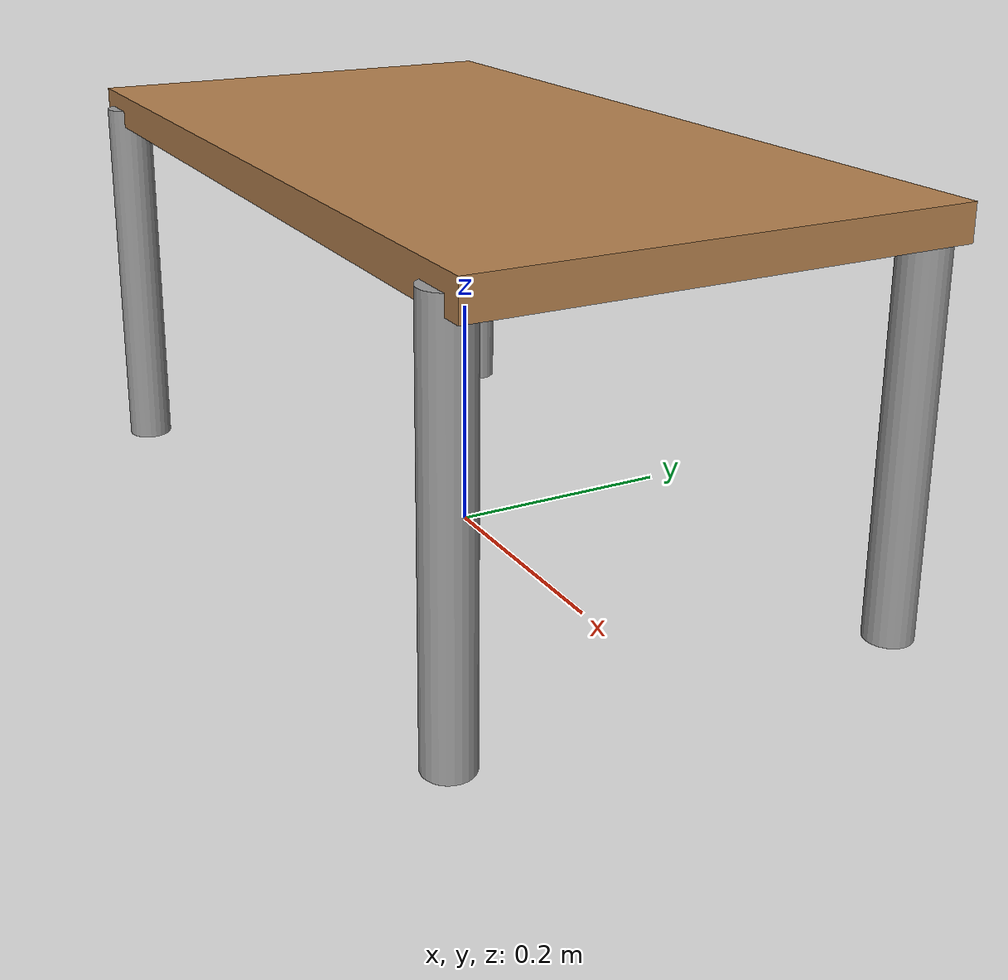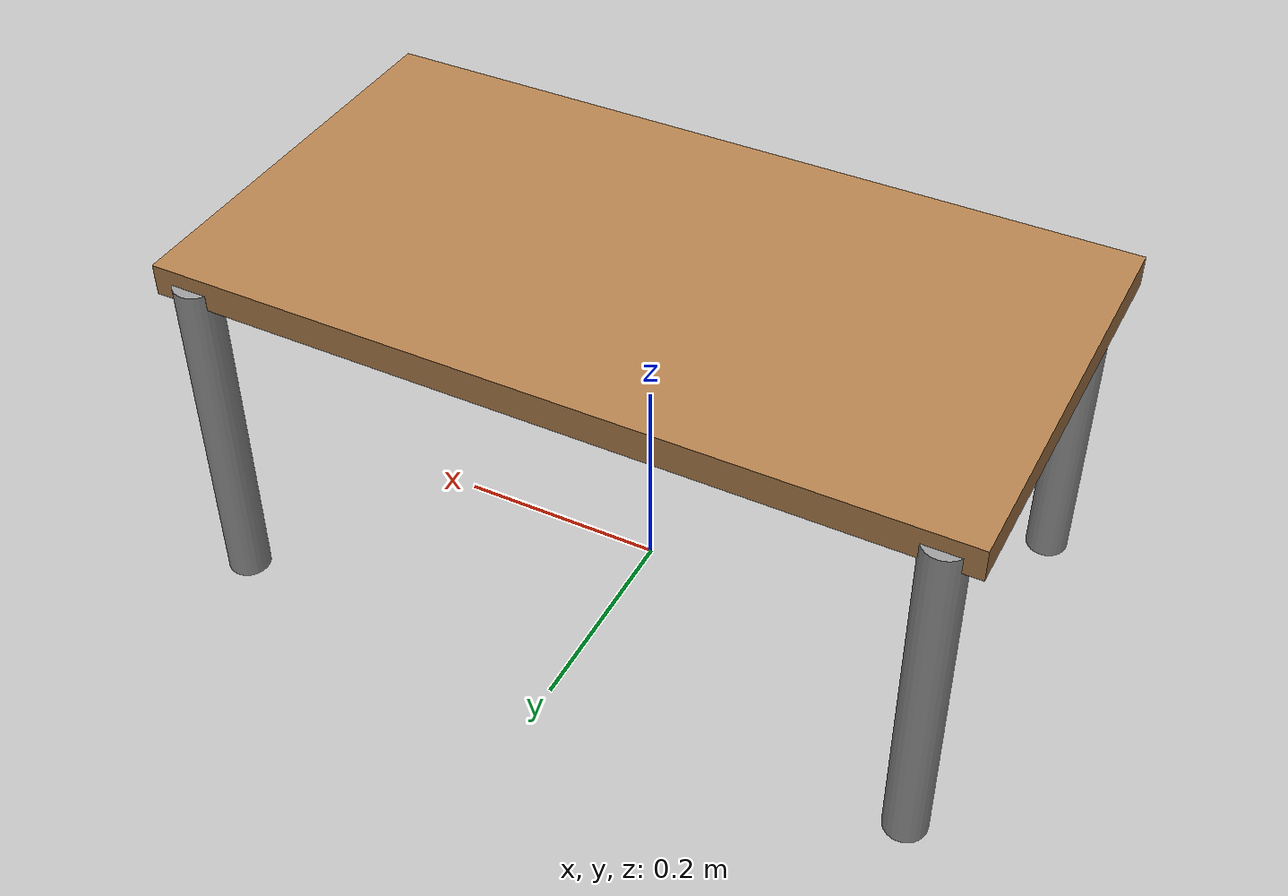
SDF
<?xml version="1.0" ?>
<sdf version="1.5">
  <model name="lower_Table">
    <static>true</static>
    <link name="link">
      <collision name="surface">
        <pose>0 0 0.32 0 0 1.57</pose>
        <geometry>
          <box>
            <size>0.4 0.75 0.06</size>
          </box>
        </geometry>
        <surface>
          <friction>
            <ode>
              <mu>0.6</mu>
              <mu2>0.6</mu2>
            </ode>
          </friction>
        </surface>
      </collision>
      <visual name="visual1">
        <pose>0 0 0.335 0 0 1.57</pose>
        <geometry>
          <box>
            <size>0.4 0.75 0.03</size>
          </box>
        </geometry>
        <material>
          <script>
            <uri>file://media/materials/scripts/gazebo.material</uri>
            <name>Gazebo/Wood</name>
          </script>
        </material>
      </visual>
      <collision name="front_left_leg">
        <pose>0.34 0.19 0.1675 0 0 1.57</pose>
        <geometry>
          <cylinder>
            <radius>0.02</radius>
            <length>0.335</length>
          </cylinder>
        </geometry>
      </collision>
      <visual name="front_left_leg">
        <pose>0.34 0.19 0.1675 0 0 1.57</pose>
        <geometry>
          <cylinder>
            <radius>0.02</radius>
            <length>0.335</length>
          </cylinder>
        </geometry>
        <material>
          <script>
            <uri>file://media/materials/scripts/gazebo.material</uri>
            <name>Gazebo/Grey</name>
          </script>
        </material>
      </visual>
      <collision name="front_right_leg">
        <pose>0.34 -0.19 0.1675 0 0 1.57</pose>
        <geometry>
          <cylinder>
            <radius>0.02</radius>
            <length>0.335</length>
          </cylinder>
        </geometry>
      </collision>
      <visual name="front_right_leg">
        <pose>0.34 -0.19 0.1675 0 0 1.57</pose>
        <geometry>
          <cylinder>
            <radius>0.02</radius>
            <length>0.335</length>
          </cylinder>
        </geometry>
        <material>
          <script>
            <uri>file://media/materials/scripts/gazebo.material</uri>
            <name>Gazebo/Grey</name>
          </script>
        </material>
      </visual>
      <collision name="back_right_leg">
        <pose>-0.34 -0.19 0.1675 0 0 1.57</pose>
        <geometry>
          <cylinder>
            <radius>0.02</radius>
            <length>0.335</length>
          </cylinder>
        </geometry>
      </collision>
      <visual name="back_right_leg">
        <pose>-0.34 -0.19 0.1675 0 0 1.57</pose>
        <geometry>
          <cylinder>
            <radius>0.02</radius>
            <length>0.335</length>
          </cylinder>
        </geometry>
        <material>
          <script>
            <uri>file://media/materials/scripts/gazebo.material</uri>
            <name>Gazebo/Grey</name>
          </script>
        </material>
      </visual>
      <collision name="back_left_leg">
        <pose>-0.34 0.19 0.1675 0 0 1.57</pose>
        <geometry>
          <cylinder>
            <radius>0.02</radius>
            <length>0.335</length>
          </cylinder>
        </geometry>
      </collision>
      <visual name="back_left_leg">
        <pose>-0.34 0.19 0.1675 0 0 1.57</pose>
        <geometry>
          <cylinder>
            <radius>0.02</radius>
            <length>0.335</length>
          </cylinder>
        </geometry>
        <material>
          <script>
            <uri>file://media/materials/scripts/gazebo.material</uri>
            <name>Gazebo/Grey</name>
          </script>
        </material>
      </visual>
    </link>
  </model>
</sdf>
